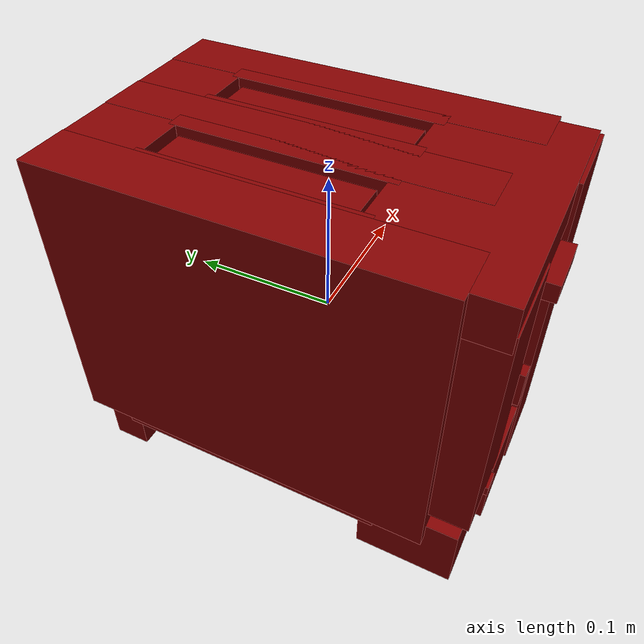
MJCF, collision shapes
<?xml version='1.0' encoding='UTF-8'?>
<mujoco model="model">
  <compiler angle="radian"/>
  <asset>
    <mesh file="visuals/Body001.obj" name="Body001_vis"/>
    <mesh file="visuals/Button001.obj" name="Button001_vis"/>
    <mesh file="visuals/Knob001.obj" name="Knob001_vis"/>
    <mesh file="visuals/Lever001.obj" name="Lever001_vis"/>
    <texture file="visuals/T_BC001.png" name="Body001_material" type="2d"/>
    <material name="Body001_material" rgba="1 1 1 1.0" texture="Body001_material" shininess="0.4472135901451111" specular="0.33333333333333337"/>
    <texture file="visuals/T_BC001.png" name="Button001_material" type="2d"/>
    <material name="Button001_material" rgba="1 1 1 1.0" texture="Button001_material" shininess="0.4472135901451111" specular="0.33333333333333337"/>
    <texture file="visuals/T_BC001.png" name="Knob001_material" type="2d"/>
    <material name="Knob001_material" rgba="1 1 1 1.0" texture="Knob001_material" shininess="0.4472135901451111" specular="0.33333333333333337"/>
    <texture file="visuals/T_BC001.png" name="Lever001_material" type="2d"/>
    <material name="Lever001_material" rgba="1 1 1 1.0" texture="Lever001_material" shininess="0.4472135901451111" specular="0.33333333333333337"/>
  </asset>
  <default>
    <default class="visual">
      <geom conaffinity="0" contype="0" group="1" type="mesh"/>
    </default>
    <default class="collision">
      <geom group="0" rgba="0.5 0 0 0.5"/>
    </default>
    <default class="spawn">
      <geom group="0" rgba="1 1 1 0.5" contype="0" conaffinity="0"/>
      <site group="0" rgba="1 1 1 0.5"/>
    </default>
    <default class="region">
      <geom group="1" conaffinity="0" contype="0" rgba="0 1 0 0"/>
    </default>
  </default>
  <worldbody>
    <body>
      <body name="object">
        <geom mesh="Body001_vis" type="mesh" solimp="0.998 0.998 0.001" solref="0.001 1" density="100" friction="0.95 0.3 0.1" class="visual" material="Body001_material"/>
        <geom class="collision" type="box" pos="-0.07403398305177689 0.018498234450817108 0.02002744935452938" size="0.018979396671056747 0.1295662820339203 0.10323614627122879" quat="1.0 0.0 0.0 0.0"/>
        <geom class="collision" type="box" pos="0.05653700232505798 -0.10652773082256317 -0.0005910694599151611" size="0.02971840836107731 0.031666021794080734 0.12190146744251251" quat="1.0 0.0 0.0 0.0"/>
        <geom class="collision" type="box" pos="-0.05653207749128342 -0.09877040237188339 -0.09683545678853989" size="0.02971806190907955 0.03320605680346489 0.025125745683908463" quat="1.0 0.0 0.0 0.0"/>
        <geom class="collision" type="box" pos="0.05653700232505798 0.12945351004600525 0.018016155809164047" size="0.029719598591327667 0.009987261146306992 0.10275445878505707" quat="1.0 0.0 0.0 0.0"/>
        <geom class="collision" type="box" pos="0.0006733480840921402 0.12619531154632568 -0.10352331399917603" size="0.08547169715166092 0.013244995847344398 0.019234800711274147" quat="1.0 0.0 0.0 0.0"/>
        <geom class="collision" type="box" pos="-8.995318785309792e-05 -0.09029171615839005 0.10896559804677963" size="0.08683852851390839 0.04537872597575188 0.014178778976202011" quat="1.0 0.0 0.0 0.0"/>
        <geom class="collision" type="box" pos="-8.995318785309792e-05 -0.10125900059938431 -0.09390535950660706" size="0.031053435057401657 0.03560931980609894 0.028256407007575035" quat="1.0 0.0 0.0 0.0"/>
        <geom class="collision" type="box" pos="0.00026154518127441406 0.023042218759655952 0.02002744935452938" size="0.016908137127757072 0.125022292137146 0.10323614627122879" quat="1.0 0.0 0.0 0.0"/>
        <geom class="collision" type="box" pos="0.07395250350236893 0.018498234450817108 0.02002744935452938" size="0.01898024044930935 0.1295662820339203 0.10323614627122879" quat="1.0 0.0 0.0 0.0"/>
        <geom class="collision" type="box" pos="-8.995318785309792e-05 0.11982020735740662 0.01983586512506008" size="0.08683852851390839 0.027964547276496887 0.10330727696418762" quat="1.0 0.0 0.0 0.0"/>
        <geom class="collision" type="box" pos="-0.029184751212596893 0.12945351004600525 0.019913386553525925" size="0.052998293191194534 0.009986789897084236 0.10085314512252808" quat="1.0 0.0 0.0 0.0"/>
        <geom class="collision" type="box" pos="-0.05780342221260071 0.022735469043254852 0.02002744935452938" size="0.005690617021173239 0.07395661622285843 0.10323614627122879" quat="1.0 0.0 0.0 0.0"/>
        <geom class="collision" type="box" pos="-0.015040709637105465 0.022735469043254852 0.02002744935452938" size="0.006103638559579849 0.07395661622285843 0.10323614627122879" quat="1.0 0.0 0.0 0.0"/>
        <geom class="collision" type="box" pos="0.015556314960122108 0.022735469043254852 0.02002744935452938" size="0.006103638559579849 0.07395661622285843 0.10323614627122879" quat="1.0 0.0 0.0 0.0"/>
        <geom class="collision" type="box" pos="0.05686512216925621 0.022735469043254852 0.02002744935452938" size="0.006103638559579849 0.07395661622285843 0.10323614627122879" quat="1.0 0.0 0.0 0.0"/>
        <geom class="collision" type="box" pos="-0.05653207749128342 -0.10345584154129028 0.02379227802157402" size="0.029718361794948578 0.033206257969141006 0.08166666328907013" quat="1.0 0.0 0.0 0.0"/>
        <geom class="collision" type="box" pos="-0.0004425998777151108 0.017841655761003494 -0.08197475969791412" size="0.09217625856399536 0.09575877338647842 0.005016511306166649" quat="1.0 0.0 0.0 0.0"/>
        <body name="Button001">
          <joint axis="0.0 1.0 0.0" pos="-0.04277997463941574 -0.13745759427547455 -0.06610045582056046" limited="true" name="Button001_joint" range="0.0 0.001" type="slide" damping="1" frictionloss="1" armature=".01" stiffness="0.05"/>
          <geom mesh="Button001_vis" type="mesh" solimp="0.998 0.998 0.001" solref="0.001 1" density="100" friction="0.95 0.3 0.1" class="visual" material="Button001_material"/>
          <geom class="collision" type="box" pos="-0.042661987245082855 -0.13661250472068787 -0.06608550250530243" size="0.0065383403562009335 0.0018150267424061894 0.003791814437136054" quat="1.0 0.0 0.0 0.0"/>
        </body>
        <body name="Knob001">
          <joint axis="0.0 -1.0 0.0" pos="-0.0005279863253235817 -0.1320163756608963 -0.014081879518926144" limited="true" name="Knob001_joint" range="0.0 5.497787143782138" type="hinge" damping="0.05" armature="0.001"/>
          <geom mesh="Knob001_vis" type="mesh" solimp="0.998 0.998 0.001" solref="0.001 1" density="100" friction="0.95 0.3 0.1" class="visual" material="Knob001_material"/>
          <geom class="collision" type="cylinder" pos="-0.0003223761741537601 -0.12781603634357452 -0.014113299548625946" size="0.015051501803100109 0.001315755071118474" quat="0.7071067094802856 -0.7071068286895752 -1.5700929612083792e-16 -2.2148510003422914e-23"/>
          <geom class="collision" type="box" pos="-0.00043603318044915795 -0.13397729396820068 -0.013679116033017635" size="0.004999999888241291 0.004999999888241291 0.014000004157423973" quat="1.0 0.0 0.0 0.0"/>
        </body>
        <body name="Lever001">
          <joint axis="0.0 0.0 -1.0" pos="0.0002563023299444467 -0.1073499247431755 0.08218265324831009" limited="true" name="Lever001_joint" range="0.0 0.05" type="slide" damping="1" frictionloss="1" armature=".01" stiffness="1" springref="-2"/>
          <geom mesh="Lever001_vis" type="mesh" solimp="0.998 0.998 0.001" solref="0.001 1" density="100" friction="0.95 0.3 0.1" class="visual" material="Lever001_material"/>
          <geom class="collision" type="box" pos="-8.995318785309792e-05 -0.1384505182504654 0.08164308965206146" size="0.019928283989429474 0.006162713281810284 0.006168621592223644" quat="1.0 0.0 0.0 0.0" name="lever_knob"/>
          <geom class="collision" type="box" pos="0.00019454353605397046 -0.11713675409555435 0.08222974091768265" size="0.0043227034620940685 0.013749341480433941 0.001964307390153408" quat="1.0 0.0 0.0 0.0"/>
          <geom class="collision" type="box" pos="-0.03604442626237869 0.024268176406621933 0.11594237387180328" size="0.01249999925494194 0.06431358307600021 0.0021727948915213346" quat="1.0 0.0 0.0 0.0" name="slotL_floor"/>
          <geom class="collision" type="box" pos="0.036204177886247635 0.023741448298096657 0.11594237387180328" size="0.01249999925494194 0.06431408226490021 0.0021728002466261387" quat="1.0 0.0 0.0 0.0" name="slotR_floor"/>
        </body>
        <geom class="region" name="reg_main" type="box" pos="0.0 0.0035023242235183716 0.0" size="0.09284639358520508 0.14136575162410736 0.12240997701883316"/>
      </body>
    </body>
  </worldbody>
  <actuator>
    <motor name="Button001_joint_actuator" joint="Button001_joint" gear="0.2"/>
    <motor name="Knob001_joint_actuator" joint="Knob001_joint" gear="10"/>
    <motor name="Lever001_joint_actuator" joint="Lever001_joint" gear="10"/>
  </actuator>
</mujoco>
